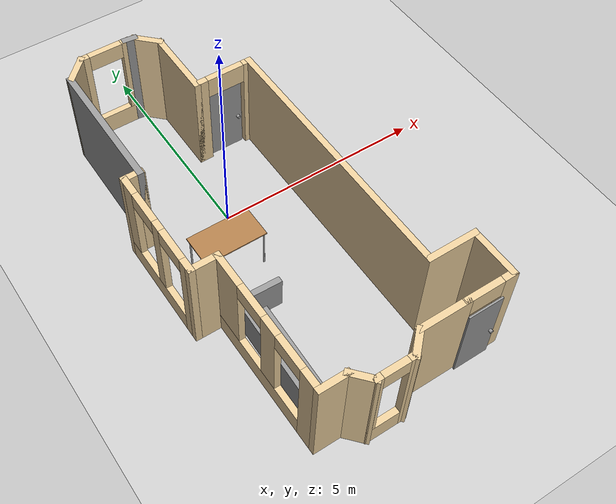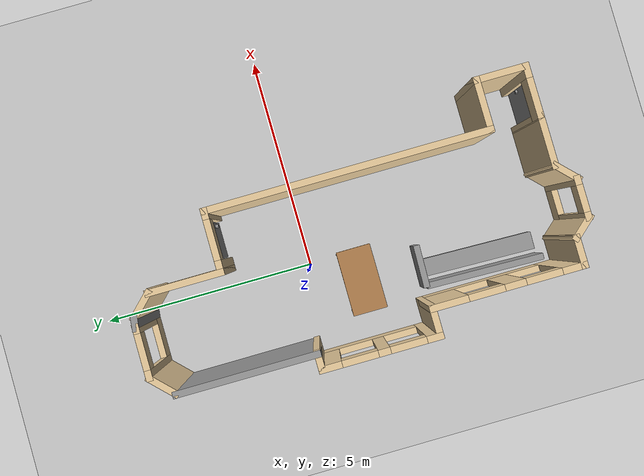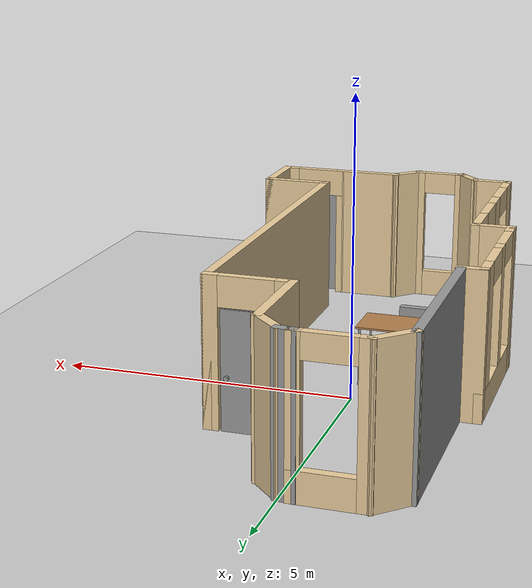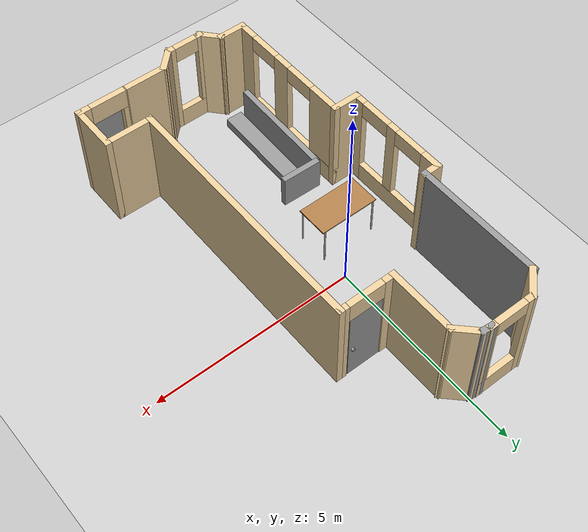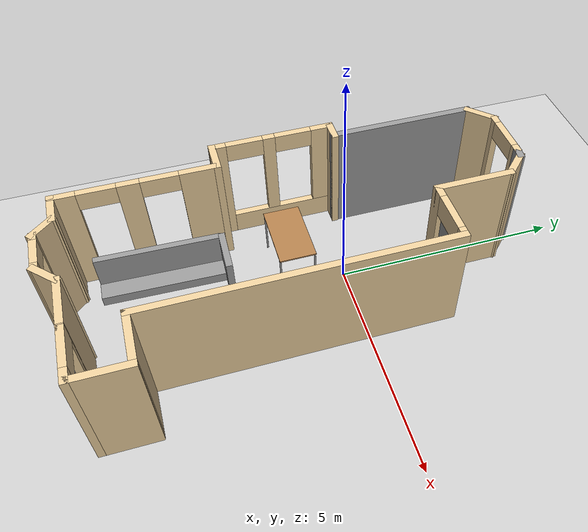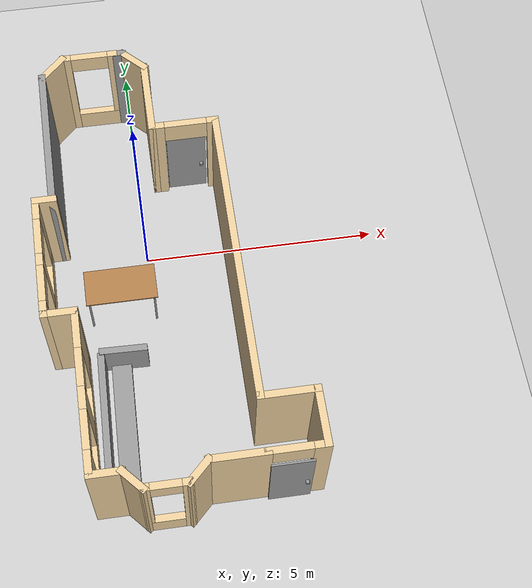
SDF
<sdf version="1.6">
 <world name="default">
  <light name="sun" type="directional">
   <pose>0 0 10 0 -0 0</pose>
   <diffuse>0.8 0.8 0.8 1</diffuse>
   <specular>0.2 0.2 0.2 1</specular>
   <attenuation>
    <range>1000</range>
    <constant>0.9</constant>
    <linear>0.01</linear>
    <quadratic>0.001</quadratic>
   </attenuation>
   <direction>-0.5 0.1 -0.9</direction>
  </light>
  <model name="ground_plane">
   <static>1</static>
   <link name="link">
    <collision name="collision">
     <geometry><plane><normal>0 0 1</normal><size>100 100</size></plane></geometry>
     <surface>
      <contact><collide_bitmask>65535</collide_bitmask></contact>
      <friction><ode><mu>100</mu><mu2>50</mu2></ode></friction>
     </surface>
    </collision>
    <visual name="visual">
     <cast_shadows>0</cast_shadows>
     <geometry><plane><normal>0 0 1</normal><size>100 100</size></plane></geometry>
     <material>
      <script><uri>file://media/materials/scripts/gazebo.material</uri><name>Gazebo/Grey</name></script>
     </material>
    </visual>
   </link>
  </model>
  <gravity>0 0 -9.8</gravity>
  <magnetic_field>6e-06 2.3e-05 -4.2e-05</magnetic_field>
  <atmosphere type="adiabatic"/>
  <physics name="default_physics" default="0" type="ode">
   <max_step_size>0.001</max_step_size>
   <real_time_factor>1</real_time_factor>
   <real_time_update_rate>1000</real_time_update_rate>
  </physics>
  <scene><ambient>0.4 0.4 0.4 1</ambient><background>0.7 0.7 0.7 1</background><shadows>1</shadows></scene>
  <spherical_coordinates>
   <surface_model>EARTH_WGS84</surface_model>
   <latitude_deg>0</latitude_deg>
   <longitude_deg>0</longitude_deg>
   <elevation>0</elevation>
   <heading_deg>0</heading_deg>
  </spherical_coordinates>
  <model name="home_v4">
   <pose>0.364459 -1.06158 0 0 -0 0</pose>
   <link name="Wall_0">
    <collision name="Wall_0_Collision">
     <geometry><box><size>1.25 0.15 2.5</size></box></geometry>
     <pose>0 0 1.25 0 -0 0</pose>
    </collision>
    <visual name="Wall_0_Visual">
     <pose>0 0 1.25 0 -0 0</pose>
     <geometry><box><size>1.25 0.15 2.5</size></box></geometry>
     <material>
      <script><uri>file://media/materials/scripts/gazebo.material</uri><name>Gazebo/Grey</name></script>
      <ambient>0.921569 0.807843 0.615686 1</ambient>
     </material>
     <meta><layer>0</layer></meta>
    </visual>
    <pose>0.840711 -4.55456 0 0 -0 3.14159</pose>
   </link>
   <link name="Wall_10">
    <collision name="Wall_10_Collision">
     <geometry><box><size>0.518694 0.15 2.5</size></box></geometry>
     <pose>0 0 1.25 0 -0 0</pose>
    </collision>
    <visual name="Wall_10_Visual">
     <pose>0 0 1.25 0 -0 0</pose>
     <geometry><box><size>0.518694 0.15 2.5</size></box></geometry>
     <material>
      <script><uri>file://media/materials/scripts/gazebo.material</uri><name>Gazebo/Grey</name></script>
      <ambient>0.921569 0.807843 0.615686 1</ambient>
     </material>
     <meta><layer>0</layer></meta>
    </visual>
    <pose>-2.31992 1.39544 0 0 -0 0</pose>
   </link>
   <link name="Wall_12">
    <collision name="Wall_12_Collision">
     <geometry><box><size>3.25 0.15 2.5</size></box></geometry>
     <pose>0 0 1.25 0 -0 0</pose>
    </collision>
    <visual name="Wall_12_Visual">
     <pose>0 0 1.25 0 -0 0</pose>
     <geometry><box><size>3.25 0.15 2.5</size></box></geometry>
     <material>
      <script><uri>file://media/materials/scripts/gazebo.material</uri><name>Gazebo/Grey</name></script>
      <ambient>1 1 1 1</ambient>
     </material>
     <meta><layer>0</layer></meta>
    </visual>
    <pose>-2.1587 2.94544 0 0 -0 1.5708</pose>
   </link>
   <link name="Wall_14">
    <collision name="Wall_14_Collision">
     <geometry><box><size>0.782712 0.15 2.5</size></box></geometry>
     <pose>0 0 1.25 0 -0 0</pose>
    </collision>
    <visual name="Wall_14_Visual">
     <pose>0 0 1.25 0 -0 0</pose>
     <geometry><box><size>0.782712 0.15 2.5</size></box></geometry>
     <material>
      <script><uri>file://media/materials/scripts/gazebo.material</uri><name>Gazebo/Grey</name></script>
      <ambient>0.921569 0.807843 0.615686 1</ambient>
     </material>
     <meta><layer>0</layer></meta>
    </visual>
    <pose>-1.91187 4.71914 0 0 -0 0.785398</pose>
   </link>
   <link name="Wall_18">
    <pose>-1.11505 4.94283 0 0 -0 0</pose>
    <visual name="Wall_18_Visual_0">
     <pose>-0.508675 0 1.25 0 -0 0</pose>
     <geometry><box><size>0.23265 0.15 2.5</size></box></geometry>
     <material>
      <script><uri>file://media/materials/scripts/gazebo.material</uri><name>Gazebo/Grey</name></script>
      <ambient>0.921569 0.807843 0.615686 1</ambient>
     </material>
     <meta><layer>0</layer></meta>
    </visual>
    <collision name="Wall_18_Collision_0">
     <geometry><box><size>0.23265 0.15 2.5</size></box></geometry>
     <pose>-0.508675 0 1.25 0 -0 0</pose>
    </collision>
    <visual name="Wall_18_Visual_1">
     <pose>0.116325 0 0.25 0 -0 0</pose>
     <geometry><box><size>1.01735 0.15 0.5</size></box></geometry>
     <material>
      <script><uri>file://media/materials/scripts/gazebo.material</uri><name>Gazebo/Grey</name></script>
      <ambient>0.921569 0.807843 0.615686 1</ambient>
     </material>
     <meta><layer>0</layer></meta>
    </visual>
    <collision name="Wall_18_Collision_1">
     <geometry><box><size>1.01735 0.15 0.5</size></box></geometry>
     <pose>0.116325 0 0.25 0 -0 0</pose>
    </collision>
    <visual name="Wall_18_Visual_2">
     <pose>0.516325 0 1.5 0 -0 0</pose>
     <geometry><box><size>0.21735 0.15 2</size></box></geometry>
     <material>
      <script><uri>file://media/materials/scripts/gazebo.material</uri><name>Gazebo/Grey</name></script>
      <ambient>0.921569 0.807843 0.615686 1</ambient>
     </material>
     <meta><layer>0</layer></meta>
    </visual>
    <collision name="Wall_18_Collision_2">
     <geometry><box><size>0.21735 0.15 2</size></box></geometry>
     <pose>0.516325 0 1.5 0 -0 0</pose>
    </collision>
    <visual name="Wall_18_Visual_3">
     <pose>0.00765 0 2.3 0 -0 0</pose>
     <geometry><box><size>0.8 0.15 0.4</size></box></geometry>
     <material>
      <script><uri>file://media/materials/scripts/gazebo.material</uri><name>Gazebo/Grey</name></script>
      <ambient>0.921569 0.807843 0.615686 1</ambient>
     </material>
     <meta><layer>0</layer></meta>
    </visual>
    <collision name="Wall_18_Collision_3">
     <geometry><box><size>0.8 0.15 0.4</size></box></geometry>
     <pose>0.00765 0 2.3 0 -0 0</pose>
    </collision>
   </link>
   <link name="Wall_19">
    <collision name="Wall_19_Collision">
     <geometry><box><size>0.369398 0.15 2.5</size></box></geometry>
     <pose>0 0 1.25 0 -0 0</pose>
    </collision>
    <visual name="Wall_19_Visual">
     <pose>0 0 1.25 0 -0 0</pose>
     <geometry><box><size>0.369398 0.15 2.5</size></box></geometry>
     <material>
      <script><uri>file://media/materials/scripts/gazebo.material</uri><name>Gazebo/Grey</name></script>
      <ambient>1 1 1 1</ambient>
     </material>
     <meta><layer>0</layer></meta>
    </visual>
    <pose>-0.479088 4.93127 0 0 0 -0.105624</pose>
   </link>
   <link name="Wall_2">
    <collision name="Wall_2_Collision">
     <geometry><box><size>0.705255 0.15 2.5</size></box></geometry>
     <pose>0 0 1.25 0 -0 0</pose>
    </collision>
    <visual name="Wall_2_Visual">
     <pose>0 0 1.25 0 -0 0</pose>
     <geometry><box><size>0.705255 0.15 2.5</size></box></geometry>
     <material>
      <script><uri>file://media/materials/scripts/gazebo.material</uri><name>Gazebo/Grey</name></script>
      <ambient>0.921569 0.807843 0.615686 1</ambient>
     </material>
     <meta><layer>0</layer></meta>
    </visual>
    <pose>0.092251 -4.7487 0 0 0 -2.36719</pose>
   </link>
   <link name="Wall_20">
    <collision name="Wall_20_Collision">
     <geometry><box><size>0.75 0.15 2.5</size></box></geometry>
     <pose>0 0 1.25 0 -0 0</pose>
    </collision>
    <visual name="Wall_20_Visual">
     <pose>0 0 1.25 0 -0 0</pose>
     <geometry><box><size>0.75 0.15 2.5</size></box></geometry>
     <material>
      <script><uri>file://media/materials/scripts/gazebo.material</uri><name>Gazebo/Grey</name></script>
      <ambient>0.921569 0.807843 0.615686 1</ambient>
     </material>
     <meta><layer>0</layer></meta>
    </visual>
    <pose>-0.157868 4.70757 0 0 0 -0.785398</pose>
   </link>
   <link name="Wall_21">
    <collision name="Wall_21_Collision">
     <geometry><box><size>1.75 0.15 2.5</size></box></geometry>
     <pose>0 0 1.25 0 -0 0</pose>
    </collision>
    <visual name="Wall_21_Visual">
     <pose>0 0 1.25 0 -0 0</pose>
     <geometry><box><size>1.75 0.15 2.5</size></box></geometry>
     <material>
      <script><uri>file://media/materials/scripts/gazebo.material</uri><name>Gazebo/Grey</name></script>
      <ambient>0.921569 0.807843 0.615686 1</ambient>
     </material>
     <meta><layer>0</layer></meta>
    </visual>
    <pose>0.054264 3.69544 0 0 0 -1.5708</pose>
   </link>
   <link name="Wall_22">
    <pose>0.729264 2.89544 0 0 -0 0</pose>
    <visual name="Wall_22_Visual_0">
     <pose>-0.581037 0 1.25 0 -0 0</pose>
     <geometry><box><size>0.337926 0.15 2.5</size></box></geometry>
     <material>
      <script><uri>file://media/materials/scripts/gazebo.material</uri><name>Gazebo/Grey</name></script>
      <ambient>0.921569 0.807843 0.615686 1</ambient>
     </material>
     <meta><layer>0</layer></meta>
    </visual>
    <collision name="Wall_22_Collision_0">
     <geometry><box><size>0.337926 0.15 2.5</size></box></geometry>
     <pose>-0.581037 0 1.25 0 -0 0</pose>
    </collision>
    <visual name="Wall_22_Visual_1">
     <pose>0.618963 0 1.25 0 -0 0</pose>
     <geometry><box><size>0.262074 0.15 2.5</size></box></geometry>
     <material>
      <script><uri>file://media/materials/scripts/gazebo.material</uri><name>Gazebo/Grey</name></script>
      <ambient>0.921569 0.807843 0.615686 1</ambient>
     </material>
     <meta><layer>0</layer></meta>
    </visual>
    <collision name="Wall_22_Collision_1">
     <geometry><box><size>0.262074 0.15 2.5</size></box></geometry>
     <pose>0.618963 0 1.25 0 -0 0</pose>
    </collision>
    <visual name="Wall_22_Visual_2">
     <pose>0.037926 0 2.25 0 -0 0</pose>
     <geometry><box><size>0.9 0.15 0.5</size></box></geometry>
     <material>
      <script><uri>file://media/materials/scripts/gazebo.material</uri><name>Gazebo/Grey</name></script>
      <ambient>0.921569 0.807843 0.615686 1</ambient>
     </material>
     <meta><layer>0</layer></meta>
    </visual>
    <collision name="Wall_22_Collision_2">
     <geometry><box><size>0.9 0.15 0.5</size></box></geometry>
     <pose>0.037926 0 2.25 0 -0 0</pose>
    </collision>
   </link>
   <link name="Wall_24">
    <collision name="Wall_24_Collision">
     <geometry><box><size>6.5 0.15 2.5</size></box></geometry>
     <pose>0 0 1.25 0 -0 0</pose>
    </collision>
    <visual name="Wall_24_Visual">
     <pose>0 0 1.25 0 -0 0</pose>
     <geometry><box><size>6.5 0.15 2.5</size></box></geometry>
     <material>
      <script><uri>file://media/materials/scripts/gazebo.material</uri><name>Gazebo/Grey</name></script>
      <ambient>0.921569 0.807843 0.615686 1</ambient>
     </material>
     <meta><layer>0</layer></meta>
    </visual>
    <pose>1.40426 -0.279559 0 0 0 -1.5708</pose>
   </link>
   <link name="Wall_25">
    <collision name="Wall_25_Collision">
     <geometry><box><size>1.25 0.15 2.5</size></box></geometry>
     <pose>0 0 1.25 0 -0 0</pose>
    </collision>
    <visual name="Wall_25_Visual">
     <pose>0 0 1.25 0 -0 0</pose>
     <geometry><box><size>1.25 0.15 2.5</size></box></geometry>
     <material>
      <script><uri>file://media/materials/scripts/gazebo.material</uri><name>Gazebo/Grey</name></script>
      <ambient>0.921569 0.807843 0.615686 1</ambient>
     </material>
     <meta><layer>0</layer></meta>
    </visual>
    <pose>1.95426 -3.45456 0 0 -0 0</pose>
   </link>
   <link name="Wall_27">
    <collision name="Wall_27_Collision">
     <geometry><box><size>1.25 0.15 2.5</size></box></geometry>
     <pose>0 0 1.25 0 -0 0</pose>
    </collision>
    <visual name="Wall_27_Visual">
     <pose>0 0 1.25 0 -0 0</pose>
     <geometry><box><size>1.25 0.15 2.5</size></box></geometry>
     <material>
      <script><uri>file://media/materials/scripts/gazebo.material</uri><name>Gazebo/Grey</name></script>
      <ambient>0.921569 0.807843 0.615686 1</ambient>
     </material>
     <meta><layer>0</layer></meta>
    </visual>
    <pose>2.50426 -4.00456 0 0 0 -1.5708</pose>
   </link>
   <link name="Wall_28">
    <pose>1.94749 -4.55456 0 0 -0 3.14159</pose>
    <visual name="Wall_28_Visual_0">
     <pose>-0.463636 0 1.25 0 -0 0</pose>
     <geometry><box><size>0.336282 0.15 2.5</size></box></geometry>
     <material>
      <script><uri>file://media/materials/scripts/gazebo.material</uri><name>Gazebo/Grey</name></script>
      <ambient>0.921569 0.807843 0.615686 1</ambient>
     </material>
     <meta><layer>0</layer></meta>
    </visual>
    <collision name="Wall_28_Collision_0">
     <geometry><box><size>0.336282 0.15 2.5</size></box></geometry>
     <pose>-0.463636 0 1.25 0 -0 0</pose>
    </collision>
    <visual name="Wall_28_Visual_1">
     <pose>0.618141 0 1.25 0 -0 0</pose>
     <geometry><box><size>0.027271 0.15 2.5</size></box></geometry>
     <material>
      <script><uri>file://media/materials/scripts/gazebo.material</uri><name>Gazebo/Grey</name></script>
      <ambient>0.921569 0.807843 0.615686 1</ambient>
     </material>
     <meta><layer>0</layer></meta>
    </visual>
    <collision name="Wall_28_Collision_1">
     <geometry><box><size>0.027271 0.15 2.5</size></box></geometry>
     <pose>0.618141 0 1.25 0 -0 0</pose>
    </collision>
    <visual name="Wall_28_Visual_2">
     <pose>0.154505 0 2.25 0 -0 0</pose>
     <geometry><box><size>0.9 0.15 0.5</size></box></geometry>
     <material>
      <script><uri>file://media/materials/scripts/gazebo.material</uri><name>Gazebo/Grey</name></script>
      <ambient>0.921569 0.807843 0.615686 1</ambient>
     </material>
     <meta><layer>0</layer></meta>
    </visual>
    <collision name="Wall_28_Collision_2">
     <geometry><box><size>0.9 0.15 0.5</size></box></geometry>
     <pose>0.154505 0 2.25 0 -0 0</pose>
    </collision>
   </link>
   <link name="Wall_3">
    <pose>-0.531209 -4.92273 0 0 -0 3.14159</pose>
    <visual name="Wall_3_Visual_0">
     <pose>-0.395508 0 1.25 0 -0 0</pose>
     <geometry><box><size>0.208983 0.15 2.5</size></box></geometry>
     <material>
      <script><uri>file://media/materials/scripts/gazebo.material</uri><name>Gazebo/Grey</name></script>
      <ambient>0.921569 0.807843 0.615686 1</ambient>
     </material>
     <meta><layer>0</layer></meta>
    </visual>
    <collision name="Wall_3_Collision_0">
     <geometry><box><size>0.208983 0.15 2.5</size></box></geometry>
     <pose>-0.395508 0 1.25 0 -0 0</pose>
    </collision>
    <visual name="Wall_3_Visual_1">
     <pose>0.104492 0 0.25 0 -0 0</pose>
     <geometry><box><size>0.791017 0.15 0.5</size></box></geometry>
     <material>
      <script><uri>file://media/materials/scripts/gazebo.material</uri><name>Gazebo/Grey</name></script>
      <ambient>0.921569 0.807843 0.615686 1</ambient>
     </material>
     <meta><layer>0</layer></meta>
    </visual>
    <collision name="Wall_3_Collision_1">
     <geometry><box><size>0.791017 0.15 0.5</size></box></geometry>
     <pose>0.104492 0 0.25 0 -0 0</pose>
    </collision>
    <visual name="Wall_3_Visual_2">
     <pose>0.404492 0 1.5 0 -0 0</pose>
     <geometry><box><size>0.191017 0.15 2</size></box></geometry>
     <material>
      <script><uri>file://media/materials/scripts/gazebo.material</uri><name>Gazebo/Grey</name></script>
      <ambient>0.921569 0.807843 0.615686 1</ambient>
     </material>
     <meta><layer>0</layer></meta>
    </visual>
    <collision name="Wall_3_Collision_2">
     <geometry><box><size>0.191017 0.15 2</size></box></geometry>
     <pose>0.404492 0 1.5 0 -0 0</pose>
    </collision>
    <visual name="Wall_3_Visual_3">
     <pose>0.008983 0 2.3 0 -0 0</pose>
     <geometry><box><size>0.6 0.15 0.4</size></box></geometry>
     <material>
      <script><uri>file://media/materials/scripts/gazebo.material</uri><name>Gazebo/Grey</name></script>
      <ambient>0.921569 0.807843 0.615686 1</ambient>
     </material>
     <meta><layer>0</layer></meta>
    </visual>
    <collision name="Wall_3_Collision_3">
     <geometry><box><size>0.6 0.15 0.4</size></box></geometry>
     <pose>0.008983 0 2.3 0 -0 0</pose>
    </collision>
   </link>
   <link name="Wall_4">
    <collision name="Wall_4_Collision">
     <geometry><box><size>0.671446 0.15 2.5</size></box></geometry>
     <pose>0 0 1.25 0 -0 0</pose>
    </collision>
    <visual name="Wall_4_Visual">
     <pose>0 0 1.25 0 -0 0</pose>
     <geometry><box><size>0.671446 0.15 2.5</size></box></geometry>
     <material>
      <script><uri>file://media/materials/scripts/gazebo.material</uri><name>Gazebo/Grey</name></script>
      <ambient>0.921569 0.807843 0.615686 1</ambient>
     </material>
     <meta><layer>0</layer></meta>
    </visual>
    <pose>-1.13024 -4.7487 0 0 -0 2.30162</pose>
   </link>
   <link name="Wall_5">
    <collision name="Wall_5_Collision">
     <geometry><box><size>0.75 0.15 2.5</size></box></geometry>
     <pose>0 0 1.25 0 -0 0</pose>
    </collision>
    <visual name="Wall_5_Visual">
     <pose>0 0 1.25 0 -0 0</pose>
     <geometry><box><size>0.75 0.15 2.5</size></box></geometry>
     <material>
      <script><uri>file://media/materials/scripts/gazebo.material</uri><name>Gazebo/Grey</name></script>
      <ambient>0.921569 0.807843 0.615686 1</ambient>
     </material>
     <meta><layer>0</layer></meta>
    </visual>
    <pose>-1.60426 -4.55456 0 0 -0 3.14159</pose>
   </link>
   <link name="Wall_6">
    <pose>-1.90426 -2.87956 0 0 -0 1.5708</pose>
    <visual name="Wall_6_Visual_0">
     <pose>-1.47 0 1.25 0 -0 0</pose>
     <geometry><box><size>0.559997 0.15 2.5</size></box></geometry>
     <material>
      <script><uri>file://media/materials/scripts/gazebo.material</uri><name>Gazebo/Grey</name></script>
      <ambient>0.921569 0.807843 0.615686 1</ambient>
     </material>
     <meta><layer>0</layer></meta>
    </visual>
    <collision name="Wall_6_Collision_0">
     <geometry><box><size>0.559997 0.15 2.5</size></box></geometry>
     <pose>-1.47 0 1.25 0 -0 0</pose>
    </collision>
    <visual name="Wall_6_Visual_1">
     <pose>0.279999 0 0.25 0 -0 0</pose>
     <geometry><box><size>2.94 0.15 0.5</size></box></geometry>
     <material>
      <script><uri>file://media/materials/scripts/gazebo.material</uri><name>Gazebo/Grey</name></script>
      <ambient>0.921569 0.807843 0.615686 1</ambient>
     </material>
     <meta><layer>0</layer></meta>
    </visual>
    <collision name="Wall_6_Collision_1">
     <geometry><box><size>2.94 0.15 0.5</size></box></geometry>
     <pose>0.279999 0 0.25 0 -0 0</pose>
    </collision>
    <visual name="Wall_6_Visual_2">
     <pose>-0.156425 0 1.5 0 -0 0</pose>
     <geometry><box><size>0.467155 0.15 2</size></box></geometry>
     <material>
      <script><uri>file://media/materials/scripts/gazebo.material</uri><name>Gazebo/Grey</name></script>
      <ambient>0.921569 0.807843 0.615686 1</ambient>
     </material>
     <meta><layer>0</layer></meta>
    </visual>
    <collision name="Wall_6_Collision_2">
     <geometry><box><size>0.467155 0.15 2</size></box></geometry>
     <pose>-0.156425 0 1.5 0 -0 0</pose>
    </collision>
    <visual name="Wall_6_Visual_3">
     <pose>1.31358 0 1.5 0 -0 0</pose>
     <geometry><box><size>0.872848 0.15 2</size></box></geometry>
     <material>
      <script><uri>file://media/materials/scripts/gazebo.material</uri><name>Gazebo/Grey</name></script>
      <ambient>0.921569 0.807843 0.615686 1</ambient>
     </material>
     <meta><layer>0</layer></meta>
    </visual>
    <collision name="Wall_6_Collision_3">
     <geometry><box><size>0.872848 0.15 2</size></box></geometry>
     <pose>1.31358 0 1.5 0 -0 0</pose>
    </collision>
    <visual name="Wall_6_Visual_4">
     <pose>-0.790003 0 2.3 0 -0 0</pose>
     <geometry><box><size>0.8 0.15 0.4</size></box></geometry>
     <material>
      <script><uri>file://media/materials/scripts/gazebo.material</uri><name>Gazebo/Grey</name></script>
      <ambient>0.921569 0.807843 0.615686 1</ambient>
     </material>
     <meta><layer>0</layer></meta>
    </visual>
    <collision name="Wall_6_Collision_4">
     <geometry><box><size>0.8 0.15 0.4</size></box></geometry>
     <pose>-0.790003 0 2.3 0 -0 0</pose>
    </collision>
    <visual name="Wall_6_Visual_5">
     <pose>0.477152 0 2.3 0 -0 0</pose>
     <geometry><box><size>0.8 0.15 0.4</size></box></geometry>
     <material>
      <script><uri>file://media/materials/scripts/gazebo.material</uri><name>Gazebo/Grey</name></script>
      <ambient>0.921569 0.807843 0.615686 1</ambient>
     </material>
     <meta><layer>0</layer></meta>
    </visual>
    <collision name="Wall_6_Collision_5">
     <geometry><box><size>0.8 0.15 0.4</size></box></geometry>
     <pose>0.477152 0 2.3 0 -0 0</pose>
    </collision>
   </link>
   <link name="Wall_8">
    <collision name="Wall_8_Collision">
     <geometry><box><size>0.75 0.15 2.5</size></box></geometry>
     <pose>0 0 1.25 0 -0 0</pose>
    </collision>
    <visual name="Wall_8_Visual">
     <pose>0 0 1.25 0 -0 0</pose>
     <geometry><box><size>0.75 0.15 2.5</size></box></geometry>
     <material>
      <script><uri>file://media/materials/scripts/gazebo.material</uri><name>Gazebo/Grey</name></script>
      <ambient>0.921569 0.807843 0.615686 1</ambient>
     </material>
     <meta><layer>0</layer></meta>
    </visual>
    <pose>-2.20426 -1.20456 0 0 -0 3.14159</pose>
   </link>
   <link name="Wall_9">
    <pose>-2.50426 0.095441 0 0 -0 1.5708</pose>
    <visual name="Wall_9_Visual_0">
     <pose>-1.19109 0 1.25 0 -0 0</pose>
     <geometry><box><size>0.367828 0.15 2.5</size></box></geometry>
     <material>
      <script><uri>file://media/materials/scripts/gazebo.material</uri><name>Gazebo/Grey</name></script>
      <ambient>0.921569 0.807843 0.615686 1</ambient>
     </material>
     <meta><layer>0</layer></meta>
    </visual>
    <collision name="Wall_9_Collision_0">
     <geometry><box><size>0.367828 0.15 2.5</size></box></geometry>
     <pose>-1.19109 0 1.25 0 -0 0</pose>
    </collision>
    <visual name="Wall_9_Visual_1">
     <pose>0.183914 0 0.25 0 -0 0</pose>
     <geometry><box><size>2.38217 0.15 0.5</size></box></geometry>
     <material>
      <script><uri>file://media/materials/scripts/gazebo.material</uri><name>Gazebo/Grey</name></script>
      <ambient>0.921569 0.807843 0.615686 1</ambient>
     </material>
     <meta><layer>0</layer></meta>
    </visual>
    <collision name="Wall_9_Collision_1">
     <geometry><box><size>2.38217 0.15 0.5</size></box></geometry>
     <pose>0.183914 0 0.25 0 -0 0</pose>
    </collision>
    <visual name="Wall_9_Visual_2">
     <pose>-0.074162 0 1.5 0 -0 0</pose>
     <geometry><box><size>0.266019 0.15 2</size></box></geometry>
     <material>
      <script><uri>file://media/materials/scripts/gazebo.material</uri><name>Gazebo/Grey</name></script>
      <ambient>0.921569 0.807843 0.615686 1</ambient>
     </material>
     <meta><layer>0</layer></meta>
    </visual>
    <collision name="Wall_9_Collision_2">
     <geometry><box><size>0.266019 0.15 2</size></box></geometry>
     <pose>-0.074162 0 1.5 0 -0 0</pose>
    </collision>
    <visual name="Wall_9_Visual_3">
     <pose>1.11692 0 1.5 0 -0 0</pose>
     <geometry><box><size>0.516153 0.15 2</size></box></geometry>
     <material>
      <script><uri>file://media/materials/scripts/gazebo.material</uri><name>Gazebo/Grey</name></script>
      <ambient>0.921569 0.807843 0.615686 1</ambient>
     </material>
     <meta><layer>0</layer></meta>
    </visual>
    <collision name="Wall_9_Collision_3">
     <geometry><box><size>0.516153 0.15 2</size></box></geometry>
     <pose>1.11692 0 1.5 0 -0 0</pose>
    </collision>
    <visual name="Wall_9_Visual_4">
     <pose>-0.607172 0 2.3 0 -0 0</pose>
     <geometry><box><size>0.8 0.15 0.4</size></box></geometry>
     <material>
      <script><uri>file://media/materials/scripts/gazebo.material</uri><name>Gazebo/Grey</name></script>
      <ambient>0.921569 0.807843 0.615686 1</ambient>
     </material>
     <meta><layer>0</layer></meta>
    </visual>
    <collision name="Wall_9_Collision_4">
     <geometry><box><size>0.8 0.15 0.4</size></box></geometry>
     <pose>-0.607172 0 2.3 0 -0 0</pose>
    </collision>
    <visual name="Wall_9_Visual_5">
     <pose>0.458847 0 2.3 0 -0 0</pose>
     <geometry><box><size>0.8 0.15 0.4</size></box></geometry>
     <material>
      <script><uri>file://media/materials/scripts/gazebo.material</uri><name>Gazebo/Grey</name></script>
      <ambient>0.921569 0.807843 0.615686 1</ambient>
     </material>
     <meta><layer>0</layer></meta>
    </visual>
    <collision name="Wall_9_Collision_5">
     <geometry><box><size>0.8 0.15 0.4</size></box></geometry>
     <pose>0.458847 0 2.3 0 -0 0</pose>
    </collision>
   </link>
   <static>1</static>
  </model>
  <model name="couch">
   <link name="link_0">
    <pose>-1.19145 -4.17235 0.583935 0 -0 0</pose>
    <inertial>
     <mass>0.33429</mass>
     <inertia>
      <ixx>0.232533</ixx>
      <ixy>0</ixy>
      <ixz>0</ixz>
      <iyy>0.0199772</iyy>
      <iyz>0</iyz>
      <izz>0.213725</izz>
     </inertia>
    </inertial>
    <visual name="visual">
     <geometry><box><size>0.14485 2.76606 0.834351</size></box></geometry>
     <material>
      <lighting>1</lighting>
      <script><uri>file://media/materials/scripts/gazebo.material</uri><name>Gazebo/Grey</name></script>
      <shader type="pixel"><normal_map>__default__</normal_map></shader>
      <ambient>0.3 0.3 0.3 1</ambient>
      <diffuse>0.7 0.7 0.7 1</diffuse>
      <specular>0.01 0.01 0.01 1</specular>
      <emissive>0 0 0 1</emissive>
     </material>
    </visual>
    <collision name="collision">
     <geometry><box><size>0.14485 2.76606 0.834351</size></box></geometry>
     <surface>
      <friction>
       <ode><mu>1</mu><mu2>1</mu2><fdir1>0 0 0</fdir1><slip1>0</slip1><slip2>0</slip2></ode>
       <torsional>
        <coefficient>1</coefficient>
        <patch_radius>0</patch_radius>
        <surface_radius>0</surface_radius>
        <use_patch_radius>1</use_patch_radius>
        <ode><slip>0</slip></ode>
       </torsional>
      </friction>
      <bounce><restitution_coefficient>0</restitution_coefficient><threshold>1e+06</threshold></bounce>
      <contact>
       <collide_without_contact>0</collide_without_contact>
       <collide_without_contact_bitmask>1</collide_without_contact_bitmask>
       <collide_bitmask>1</collide_bitmask>
       <ode>
        <soft_cfm>0</soft_cfm>
        <soft_erp>0.2</soft_erp>
        <kp>1e+13</kp>
        <kd>1</kd>
        <max_vel>0.01</max_vel>
        <min_depth>0</min_depth>
       </ode>
       <bullet>
        <split_impulse>1</split_impulse>
        <split_impulse_penetration_threshold>-0.01</split_impulse_penetration_threshold>
        <soft_cfm>0</soft_cfm>
        <soft_erp>0.2</soft_erp>
        <kp>1e+13</kp>
        <kd>1</kd>
       </bullet>
      </contact>
     </surface>
    </collision>
   </link>
   <link name="link_2">
    <pose>-0.806417 -4.15963 0.280513 0 -0 0</pose>
    <inertial>
     <mass>0.174926</mass>
     <inertia>
      <ixx>0.112278</ixx>
      <ixy>0</ixy>
      <ixz>0</ixz>
      <iyy>0.00327316</iyy>
      <iyz>0</iyz>
      <izz>0.114057</izz>
     </inertia>
    </inertial>
    <visual name="visual">
     <geometry><box><size>0.416255 2.76606 0.226434</size></box></geometry>
     <material>
      <lighting>1</lighting>
      <script><uri>file://media/materials/scripts/gazebo.material</uri><name>Gazebo/Grey</name></script>
      <shader type="pixel"><normal_map>__default__</normal_map></shader>
      <ambient>0.3 0.3 0.3 1</ambient>
      <diffuse>0.7 0.7 0.7 1</diffuse>
      <specular>0.01 0.01 0.01 1</specular>
      <emissive>0 0 0 1</emissive>
     </material>
    </visual>
    <collision name="collision">
     <geometry><box><size>0.416255 2.76606 0.226434</size></box></geometry>
     <surface>
      <friction>
       <ode><mu>1</mu><mu2>1</mu2><fdir1>0 0 0</fdir1><slip1>0</slip1><slip2>0</slip2></ode>
       <torsional>
        <coefficient>1</coefficient>
        <patch_radius>0</patch_radius>
        <surface_radius>0</surface_radius>
        <use_patch_radius>1</use_patch_radius>
        <ode><slip>0</slip></ode>
       </torsional>
      </friction>
      <bounce><restitution_coefficient>0</restitution_coefficient><threshold>1e+06</threshold></bounce>
      <contact>
       <collide_without_contact>0</collide_without_contact>
       <collide_without_contact_bitmask>1</collide_without_contact_bitmask>
       <collide_bitmask>1</collide_bitmask>
       <ode>
        <soft_cfm>0</soft_cfm>
        <soft_erp>0.2</soft_erp>
        <kp>1e+13</kp>
        <kd>1</kd>
        <max_vel>0.01</max_vel>
        <min_depth>0</min_depth>
       </ode>
       <bullet>
        <split_impulse>1</split_impulse>
        <split_impulse_penetration_threshold>-0.01</split_impulse_penetration_threshold>
        <soft_cfm>0</soft_cfm>
        <soft_erp>0.2</soft_erp>
        <kp>1e+13</kp>
        <kd>1</kd>
       </bullet>
      </contact>
     </surface>
    </collision>
   </link>
   <link name="link_3">
    <pose>-0.724044 -2.77007 0.606187 0 -0 0</pose>
    <inertial>
     <mass>0.172557</mass>
     <inertia>
      <ixx>0.00921711</ixx>
      <ixy>0</ixy>
      <ixz>0</ixz>
      <iyy>0.0232951</iyy>
      <iyz>0</iyz>
      <izz>0.0146814</izz>
     </inertia>
    </inertial>
    <visual name="visual">
     <geometry><box><size>1 0.14485 0.834351</size></box></geometry>
     <material>
      <lighting>1</lighting>
      <script><uri>file://media/materials/scripts/gazebo.material</uri><name>Gazebo/Grey</name></script>
      <shader type="pixel"><normal_map>__default__</normal_map></shader>
      <ambient>0.3 0.3 0.3 1</ambient>
      <diffuse>0.7 0.7 0.7 1</diffuse>
      <specular>0.01 0.01 0.01 1</specular>
      <emissive>0 0 0 1</emissive>
     </material>
    </visual>
    <collision name="collision">
     <geometry><box><size>1 0.14485 0.834351</size></box></geometry>
     <surface>
      <friction>
       <ode><mu>1</mu><mu2>1</mu2><fdir1>0 0 0</fdir1><slip1>0</slip1><slip2>0</slip2></ode>
       <torsional>
        <coefficient>1</coefficient>
        <patch_radius>0</patch_radius>
        <surface_radius>0</surface_radius>
        <use_patch_radius>1</use_patch_radius>
        <ode><slip>0</slip></ode>
       </torsional>
      </friction>
      <bounce><restitution_coefficient>0</restitution_coefficient><threshold>1e+06</threshold></bounce>
      <contact>
       <collide_without_contact>0</collide_without_contact>
       <collide_without_contact_bitmask>1</collide_without_contact_bitmask>
       <collide_bitmask>1</collide_bitmask>
       <ode>
        <soft_cfm>0</soft_cfm>
        <soft_erp>0.2</soft_erp>
        <kp>1e+13</kp>
        <kd>1</kd>
        <max_vel>0.01</max_vel>
        <min_depth>0</min_depth>
       </ode>
       <bullet>
        <split_impulse>1</split_impulse>
        <split_impulse_penetration_threshold>-0.01</split_impulse_penetration_threshold>
        <soft_cfm>0</soft_cfm>
        <soft_erp>0.2</soft_erp>
        <kp>1e+13</kp>
        <kd>1</kd>
       </bullet>
      </contact>
     </surface>
    </collision>
   </link>
   <joint name="link_0_JOINT_0" type="fixed">
    <parent>link_0</parent>
    <child>link_2</child>
    <physics>
     <ode><limit><cfm>0</cfm><erp>0.2</erp></limit><suspension><cfm>0</cfm><erp>0.2</erp></suspension></ode>
    </physics>
   </joint>
   <joint name="link_0_JOINT_1" type="fixed">
    <parent>link_0</parent>
    <child>link_3</child>
    <physics>
     <ode><limit><cfm>0</cfm><erp>0.2</erp></limit><suspension><cfm>0</cfm><erp>0.2</erp></suspension></ode>
    </physics>
   </joint>
   <static>0</static>
   <pose>0.066201 0.293701 -0.167914 0 0.001032 -0.025708</pose>
  </model>
  <model name="table">
   <static>1</static>
   <link name="link">
    <collision name="surface">
     <pose>0 0 1 0 -0 0</pose>
     <geometry><box><size>1.5 0.8 0.03</size></box></geometry>
     <surface><friction><ode><mu>0.6</mu><mu2>0.6</mu2></ode></friction></surface>
    </collision>
    <visual name="visual1">
     <pose>0 0 1 0 -0 0</pose>
     <geometry><box><size>1.5 0.8 0.03</size></box></geometry>
     <material>
      <script><uri>file://media/materials/scripts/gazebo.material</uri><name>Gazebo/Wood</name></script>
     </material>
    </visual>
    <collision name="front_left_leg">
     <pose>0.68 0.38 0.5 0 -0 0</pose>
     <geometry><cylinder><radius>0.02</radius><length>1</length></cylinder></geometry>
    </collision>
    <visual name="front_left_leg">
     <pose>0.68 0.38 0.5 0 -0 0</pose>
     <geometry><cylinder><radius>0.02</radius><length>1</length></cylinder></geometry>
     <material>
      <script><uri>file://media/materials/scripts/gazebo.material</uri><name>Gazebo/Grey</name></script>
     </material>
    </visual>
    <collision name="front_right_leg">
     <pose>0.68 -0.38 0.5 0 -0 0</pose>
     <geometry><cylinder><radius>0.02</radius><length>1</length></cylinder></geometry>
    </collision>
    <visual name="front_right_leg">
     <pose>0.68 -0.38 0.5 0 -0 0</pose>
     <geometry><cylinder><radius>0.02</radius><length>1</length></cylinder></geometry>
     <material>
      <script><uri>file://media/materials/scripts/gazebo.material</uri><name>Gazebo/Grey</name></script>
     </material>
    </visual>
    <collision name="back_right_leg">
     <pose>-0.68 -0.38 0.5 0 -0 0</pose>
     <geometry><cylinder><radius>0.02</radius><length>1</length></cylinder></geometry>
    </collision>
    <visual name="back_right_leg">
     <pose>-0.68 -0.38 0.5 0 -0 0</pose>
     <geometry><cylinder><radius>0.02</radius><length>1</length></cylinder></geometry>
     <material>
      <script><uri>file://media/materials/scripts/gazebo.material</uri><name>Gazebo/Grey</name></script>
     </material>
    </visual>
    <collision name="back_left_leg">
     <pose>-0.68 0.38 0.5 0 -0 0</pose>
     <geometry><cylinder><radius>0.02</radius><length>1</length></cylinder></geometry>
    </collision>
    <visual name="back_left_leg">
     <pose>-0.68 0.38 0.5 0 -0 0</pose>
     <geometry><cylinder><radius>0.02</radius><length>1</length></cylinder></geometry>
     <material>
      <script><uri>file://media/materials/scripts/gazebo.material</uri><name>Gazebo/Grey</name></script>
     </material>
    </visual>
   </link>
   <pose>-0.635873 -1.04074 0 0 -0 0</pose>
  </model>
  <model name="door">
   <link name="link_0">
    <pose>-0.161189 0.003647 0.052393 0 -0 0</pose>
    <inertial>
     <mass>0.0674662</mass>
     <inertia>
      <ixx>0.0219279</ixx>
      <ixy>0</ixy>
      <ixz>0</ixz>
      <iyy>0.0259409</iyy>
      <iyz>0</iyz>
      <izz>0.00403139</izz>
     </inertia>
    </inertial>
    <visual name="visual">
     <geometry><box><size>0.845824 0.040409 1.97449</size></box></geometry>
     <material>
      <lighting>1</lighting>
      <script><uri>file://media/materials/scripts/gazebo.material</uri><name>Gazebo/Grey</name></script>
      <shader type="pixel"/>
      <ambient>0.3 0.3 0.3 1</ambient>
      <diffuse>0.7 0.7 0.7 1</diffuse>
      <specular>0.01 0.01 0.01 1</specular>
      <emissive>0 0 0 1</emissive>
     </material>
    </visual>
    <collision name="collision">
     <geometry><box><size>0.845824 0.040409 1.97449</size></box></geometry>
     <surface>
      <friction>
       <ode><mu>1</mu><mu2>1</mu2><fdir1>0 0 0</fdir1><slip1>0</slip1><slip2>0</slip2></ode>
       <torsional>
        <coefficient>1</coefficient>
        <patch_radius>0</patch_radius>
        <surface_radius>0</surface_radius>
        <use_patch_radius>1</use_patch_radius>
        <ode><slip>0</slip></ode>
       </torsional>
      </friction>
      <bounce><restitution_coefficient>0</restitution_coefficient><threshold>1e+06</threshold></bounce>
      <contact>
       <collide_without_contact>0</collide_without_contact>
       <collide_without_contact_bitmask>1</collide_without_contact_bitmask>
       <collide_bitmask>1</collide_bitmask>
       <ode>
        <soft_cfm>0</soft_cfm>
        <soft_erp>0.2</soft_erp>
        <kp>1e+13</kp>
        <kd>1</kd>
        <max_vel>0.01</max_vel>
        <min_depth>0</min_depth>
       </ode>
       <bullet>
        <split_impulse>1</split_impulse>
        <split_impulse_penetration_threshold>-0.01</split_impulse_penetration_threshold>
        <soft_cfm>0</soft_cfm>
        <soft_erp>0.2</soft_erp>
        <kp>1e+13</kp>
        <kd>1</kd>
       </bullet>
      </contact>
     </surface>
    </collision>
   </link>
   <link name="link_1">
    <pose>0.16119 -0.00364 -0.052394 1.57767 -0 0</pose>
    <inertial>
     <mass>0.00101963</mass>
     <inertia>
      <ixx>2.69104e-06</ixx>
      <ixy>0</ixy>
      <ixz>0</ixz>
      <iyy>2.69104e-06</iyy>
      <iyz>0</iyz>
      <izz>7.9033e-07</izz>
     </inertia>
    </inertial>
    <visual name="visual">
     <geometry><cylinder><radius>0.0393729</radius><length>0.164378</length></cylinder></geometry>
     <material>
      <lighting>1</lighting>
      <script><uri>file://media/materials/scripts/gazebo.material</uri><name>Gazebo/Grey</name></script>
      <shader type="pixel"/>
      <ambient>0.3 0.3 0.3 1</ambient>
      <diffuse>0.7 0.7 0.7 1</diffuse>
      <specular>0.01 0.01 0.01 1</specular>
      <emissive>0 0 0 1</emissive>
     </material>
    </visual>
    <collision name="collision">
     <geometry><cylinder><radius>0.039373</radius><length>0.164378</length></cylinder></geometry>
     <surface>
      <friction>
       <ode><mu>1</mu><mu2>1</mu2><fdir1>0 0 0</fdir1><slip1>0</slip1><slip2>0</slip2></ode>
       <torsional>
        <coefficient>1</coefficient>
        <patch_radius>0</patch_radius>
        <surface_radius>0</surface_radius>
        <use_patch_radius>1</use_patch_radius>
        <ode><slip>0</slip></ode>
       </torsional>
      </friction>
      <bounce><restitution_coefficient>0</restitution_coefficient><threshold>1e+06</threshold></bounce>
      <contact>
       <collide_without_contact>0</collide_without_contact>
       <collide_without_contact_bitmask>1</collide_without_contact_bitmask>
       <collide_bitmask>1</collide_bitmask>
       <ode>
        <soft_cfm>0</soft_cfm>
        <soft_erp>0.2</soft_erp>
        <kp>1e+13</kp>
        <kd>1</kd>
        <max_vel>0.01</max_vel>
        <min_depth>0</min_depth>
       </ode>
       <bullet>
        <split_impulse>1</split_impulse>
        <split_impulse_penetration_threshold>-0.01</split_impulse_penetration_threshold>
        <soft_cfm>0</soft_cfm>
        <soft_erp>0.2</soft_erp>
        <kp>1e+13</kp>
        <kd>1</kd>
       </bullet>
      </contact>
     </surface>
    </collision>
   </link>
   <joint name="link_0_JOINT_0" type="fixed">
    <parent>link_0</parent>
    <child>link_1</child>
    <physics>
     <ode><limit><cfm>0</cfm><erp>0.2</erp></limit><suspension><cfm>0</cfm><erp>0.2</erp></suspension></ode>
    </physics>
   </joint>
   <static>0</static>
   <pose>1.28541 1.86999 0.93485 0 3e-06 -0.000103</pose>
  </model>
  <model name="door_0">
   <link name="link_0">
    <pose>-0.161189 0.003647 0.052393 0 -0 0</pose>
    <inertial>
     <mass>0.0674662</mass>
     <inertia>
      <ixx>0.0219279</ixx>
      <ixy>0</ixy>
      <ixz>0</ixz>
      <iyy>0.0259409</iyy>
      <iyz>0</iyz>
      <izz>0.00403139</izz>
     </inertia>
    </inertial>
    <visual name="visual">
     <geometry><box><size>0.845824 0.040409 1.97449</size></box></geometry>
     <material>
      <lighting>1</lighting>
      <script><uri>file://media/materials/scripts/gazebo.material</uri><name>Gazebo/Grey</name></script>
      <shader type="pixel"/>
      <ambient>0.3 0.3 0.3 1</ambient>
      <diffuse>0.7 0.7 0.7 1</diffuse>
      <specular>0.01 0.01 0.01 1</specular>
      <emissive>0 0 0 1</emissive>
     </material>
    </visual>
    <collision name="collision">
     <geometry><box><size>0.845824 0.040409 1.97449</size></box></geometry>
     <surface>
      <friction>
       <ode><mu>1</mu><mu2>1</mu2><fdir1>0 0 0</fdir1><slip1>0</slip1><slip2>0</slip2></ode>
       <torsional>
        <coefficient>1</coefficient>
        <patch_radius>0</patch_radius>
        <surface_radius>0</surface_radius>
        <use_patch_radius>1</use_patch_radius>
        <ode><slip>0</slip></ode>
       </torsional>
      </friction>
      <bounce><restitution_coefficient>0</restitution_coefficient><threshold>1e+06</threshold></bounce>
      <contact>
       <collide_without_contact>0</collide_without_contact>
       <collide_without_contact_bitmask>1</collide_without_contact_bitmask>
       <collide_bitmask>1</collide_bitmask>
       <ode>
        <soft_cfm>0</soft_cfm>
        <soft_erp>0.2</soft_erp>
        <kp>1e+13</kp>
        <kd>1</kd>
        <max_vel>0.01</max_vel>
        <min_depth>0</min_depth>
       </ode>
       <bullet>
        <split_impulse>1</split_impulse>
        <split_impulse_penetration_threshold>-0.01</split_impulse_penetration_threshold>
        <soft_cfm>0</soft_cfm>
        <soft_erp>0.2</soft_erp>
        <kp>1e+13</kp>
        <kd>1</kd>
       </bullet>
      </contact>
     </surface>
    </collision>
   </link>
   <link name="link_1">
    <pose>0.16119 -0.00364 -0.052394 1.57767 -0 0</pose>
    <inertial>
     <mass>0.00101963</mass>
     <inertia>
      <ixx>2.69104e-06</ixx>
      <ixy>0</ixy>
      <ixz>0</ixz>
      <iyy>2.69104e-06</iyy>
      <iyz>0</iyz>
      <izz>7.9033e-07</izz>
     </inertia>
    </inertial>
    <visual name="visual">
     <geometry><cylinder><radius>0.0393729</radius><length>0.164378</length></cylinder></geometry>
     <material>
      <lighting>1</lighting>
      <script><uri>file://media/materials/scripts/gazebo.material</uri><name>Gazebo/Grey</name></script>
      <shader type="pixel"/>
      <ambient>0.3 0.3 0.3 1</ambient>
      <diffuse>0.7 0.7 0.7 1</diffuse>
      <specular>0.01 0.01 0.01 1</specular>
      <emissive>0 0 0 1</emissive>
     </material>
    </visual>
    <collision name="collision">
     <geometry><cylinder><radius>0.039373</radius><length>0.164378</length></cylinder></geometry>
     <surface>
      <friction>
       <ode><mu>1</mu><mu2>1</mu2><fdir1>0 0 0</fdir1><slip1>0</slip1><slip2>0</slip2></ode>
       <torsional>
        <coefficient>1</coefficient>
        <patch_radius>0</patch_radius>
        <surface_radius>0</surface_radius>
        <use_patch_radius>1</use_patch_radius>
        <ode><slip>0</slip></ode>
       </torsional>
      </friction>
      <bounce><restitution_coefficient>0</restitution_coefficient><threshold>1e+06</threshold></bounce>
      <contact>
       <collide_without_contact>0</collide_without_contact>
       <collide_without_contact_bitmask>1</collide_without_contact_bitmask>
       <collide_bitmask>1</collide_bitmask>
       <ode>
        <soft_cfm>0</soft_cfm>
        <soft_erp>0.2</soft_erp>
        <kp>1e+13</kp>
        <kd>1</kd>
        <max_vel>0.01</max_vel>
        <min_depth>0</min_depth>
       </ode>
       <bullet>
        <split_impulse>1</split_impulse>
        <split_impulse_penetration_threshold>-0.01</split_impulse_penetration_threshold>
        <soft_cfm>0</soft_cfm>
        <soft_erp>0.2</soft_erp>
        <kp>1e+13</kp>
        <kd>1</kd>
       </bullet>
      </contact>
     </surface>
    </collision>
   </link>
   <joint name="link_0_JOINT_0" type="fixed">
    <parent>link_0</parent>
    <child>link_1</child>
    <physics>
     <ode><limit><cfm>0</cfm><erp>0.2</erp></limit><suspension><cfm>0</cfm><erp>0.2</erp></suspension></ode>
    </physics>
   </joint>
   <static>0</static>
   <pose>2.38756 -5.7297 0.934852 0 0 -4.6e-05</pose>
  </model>
 </world>
</sdf>
